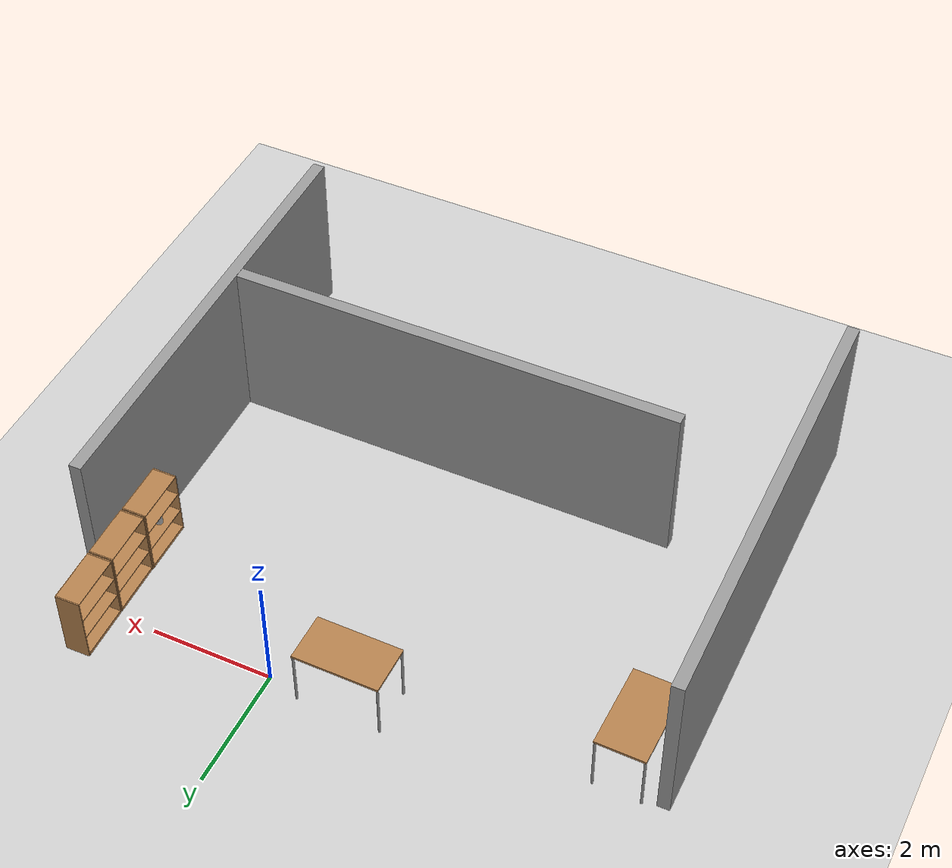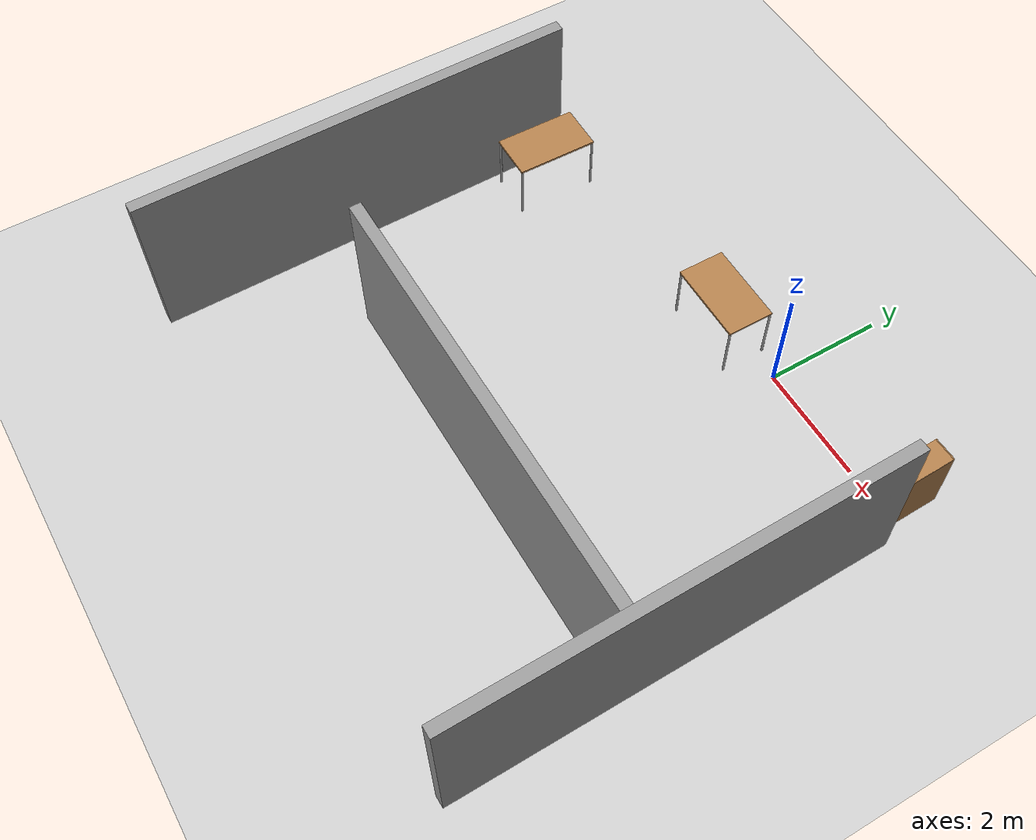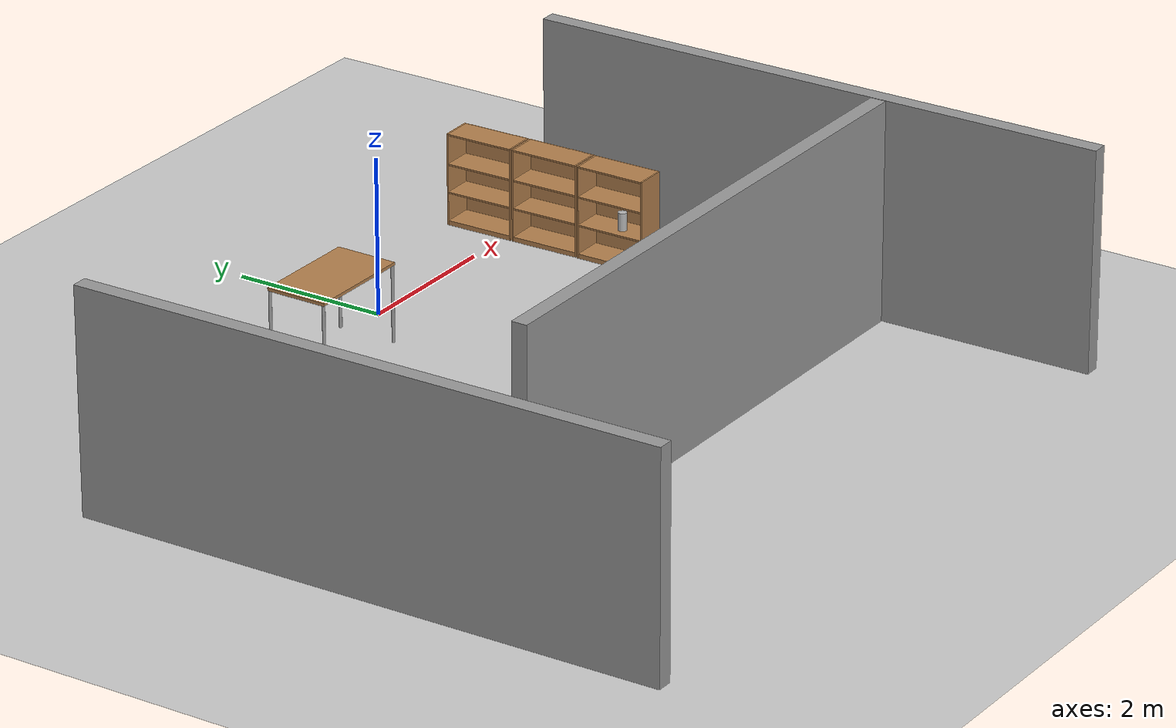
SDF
<sdf version="1.6">
 <world name="default">
  <model name="table_0">
   <static>0</static>
   <link name="link">
    <collision name="surface">
     <pose>0 0 1 0 -0 0</pose>
     <geometry><box><size>1.5 0.8 0.03</size></box></geometry>
     <surface><friction><ode><mu>0.6</mu><mu2>0.6</mu2></ode></friction></surface>
    </collision>
    <visual name="visual1">
     <pose>0 0 1 0 -0 0</pose>
     <geometry><box><size>1.4 0.8 0.04</size></box></geometry>
     <material>
      <script><uri>file://media/materials/scripts/gazebo.material</uri><name>Gazebo/Wood</name></script>
     </material>
    </visual>
    <collision name="front_left_leg">
     <pose>0.68 0.38 0.5 0 -0 0</pose>
     <geometry><cylinder><radius>0.02</radius><length>1</length></cylinder></geometry>
    </collision>
    <visual name="front_left_leg">
     <pose>0.68 0.38 0.5 0 -0 0</pose>
     <geometry><cylinder><radius>0.02</radius><length>1</length></cylinder></geometry>
     <material>
      <script><uri>file://media/materials/scripts/gazebo.material</uri><name>Gazebo/Grey</name></script>
     </material>
    </visual>
    <collision name="front_right_leg">
     <pose>0.68 -0.38 0.5 0 -0 0</pose>
     <geometry><cylinder><radius>0.02</radius><length>1</length></cylinder></geometry>
    </collision>
    <visual name="front_right_leg">
     <pose>0.68 -0.38 0.5 0 -0 0</pose>
     <geometry><cylinder><radius>0.02</radius><length>1</length></cylinder></geometry>
     <material>
      <script><uri>file://media/materials/scripts/gazebo.material</uri><name>Gazebo/Grey</name></script>
     </material>
    </visual>
    <collision name="back_right_leg">
     <pose>-0.68 -0.38 0.5 0 -0 0</pose>
     <geometry><cylinder><radius>0.02</radius><length>1</length></cylinder></geometry>
    </collision>
    <visual name="back_right_leg">
     <pose>-0.68 -0.38 0.5 0 -0 0</pose>
     <geometry><cylinder><radius>0.02</radius><length>1</length></cylinder></geometry>
     <material>
      <script><uri>file://media/materials/scripts/gazebo.material</uri><name>Gazebo/Grey</name></script>
     </material>
    </visual>
    <collision name="back_left_leg">
     <pose>-0.68 0.38 0.5 0 -0 0</pose>
     <geometry><cylinder><radius>0.02</radius><length>1</length></cylinder></geometry>
    </collision>
    <visual name="back_left_leg">
     <pose>-0.68 0.38 0.5 0 -0 0</pose>
     <geometry><cylinder><radius>0.02</radius><length>1</length></cylinder></geometry>
     <material>
      <script><uri>file://media/materials/scripts/gazebo.material</uri><name>Gazebo/Grey</name></script>
     </material>
    </visual>
    <inertial>
     <inertia><ixx>1</ixx><ixy>0</ixy><ixz>0</ixz><iyy>1</iyy><iyz>0</iyz><izz>1</izz></inertia>
     <mass>1</mass>
    </inertial>
   </link>
   <pose>-5.39414 -1.0093 -2e-06 0 -0 1.55426</pose>
  </model>
  <model name="bookshelf_0">
   <static>1</static>
   <link name="link">
    <inertial><mass>1</mass></inertial>
    <collision name="back">
     <pose>0 0.005 0.6 0 -0 0</pose>
     <geometry><box><size>0.9 0.01 1.2</size></box></geometry>
    </collision>
    <visual name="visual1">
     <pose>0 0.005 0.6 0 -0 0</pose>
     <geometry><box><size>0.9 0.01 1.2</size></box></geometry>
     <material>
      <script><uri>file://media/materials/scripts/gazebo.material</uri><name>Gazebo/Wood</name></script>
     </material>
    </visual>
    <collision name="left_side">
     <pose>0.45 -0.195 0.6 0 -0 0</pose>
     <geometry><box><size>0.02 0.4 1.2</size></box></geometry>
    </collision>
    <visual name="visual2">
     <pose>0.45 -0.195 0.6 0 -0 0</pose>
     <geometry><box><size>0.02 0.4 1.2</size></box></geometry>
     <material>
      <script><uri>file://media/materials/scripts/gazebo.material</uri><name>Gazebo/Wood</name></script>
     </material>
    </visual>
    <collision name="right_side">
     <pose>-0.45 -0.195 0.6 0 -0 0</pose>
     <geometry><box><size>0.02 0.4 1.2</size></box></geometry>
    </collision>
    <visual name="visual3">
     <pose>-0.45 -0.195 0.6 0 -0 0</pose>
     <geometry><box><size>0.02 0.4 1.2</size></box></geometry>
     <material>
      <script><uri>file://media/materials/scripts/gazebo.material</uri><name>Gazebo/Wood</name></script>
     </material>
    </visual>
    <collision name="bottom">
     <pose>0 -0.195 0.03 0 -0 0</pose>
     <geometry><box><size>0.88 0.4 0.06</size></box></geometry>
    </collision>
    <visual name="visual4">
     <pose>0 -0.195 0.03 0 -0 0</pose>
     <geometry><box><size>0.88 0.4 0.06</size></box></geometry>
     <material>
      <script><uri>file://media/materials/scripts/gazebo.material</uri><name>Gazebo/Wood</name></script>
     </material>
    </visual>
    <collision name="top">
     <pose>0 -0.195 1.19 0 -0 0</pose>
     <geometry><box><size>0.88 0.4 0.02</size></box></geometry>
    </collision>
    <visual name="visual5">
     <pose>0 -0.195 1.19 0 -0 0</pose>
     <geometry><box><size>0.88 0.4 0.02</size></box></geometry>
     <material>
      <script><uri>file://media/materials/scripts/gazebo.material</uri><name>Gazebo/Wood</name></script>
     </material>
    </visual>
    <collision name="low_shelf">
     <pose>0 -0.195 0.43 0 -0 0</pose>
     <geometry><box><size>0.88 0.4 0.02</size></box></geometry>
    </collision>
    <visual name="visual6">
     <pose>0 -0.195 0.43 0 -0 0</pose>
     <geometry><box><size>0.88 0.4 0.02</size></box></geometry>
     <material>
      <script><uri>file://media/materials/scripts/gazebo.material</uri><name>Gazebo/Wood</name></script>
     </material>
    </visual>
    <collision name="high_shelf">
     <pose>0 -0.195 0.8 0 -0 0</pose>
     <geometry><box><size>0.88 0.4 0.02</size></box></geometry>
    </collision>
    <visual name="visual7">
     <pose>0 -0.195 0.8 0 -0 0</pose>
     <geometry><box><size>0.88 0.4 0.02</size></box></geometry>
     <material>
      <script><uri>file://media/materials/scripts/gazebo.material</uri><name>Gazebo/Wood</name></script>
     </material>
    </visual>
   </link>
   <pose>3.05164 -1.50369 0 0 0 -1.55787</pose>
  </model>
  <model name="ground_plane">
   <static>1</static>
   <link name="link">
    <collision name="collision">
     <geometry><plane><normal>0 0 1</normal><size>100 100</size></plane></geometry>
     <surface><friction><ode><mu>100</mu><mu2>50</mu2></ode></friction></surface>
    </collision>
    <visual name="visual">
     <cast_shadows>0</cast_shadows>
     <geometry><plane><normal>0 0 1</normal><size>100 100</size></plane></geometry>
     <material>
      <script><uri>file://media/materials/scripts/gazebo.material</uri><name>Gazebo/Grey</name></script>
     </material>
    </visual>
   </link>
   <pose>-12.7845 -6.3181 0 0 -0 0</pose>
  </model>
  <model name="grey_wall_0_clone">
   <static>1</static>
   <link name="link">
    <pose>0 0 1.4 0 -0 0</pose>
    <collision name="collision"><geometry><box><size>7.5 0.2 2.8</size></box></geometry></collision>
    <visual name="visual">
     <cast_shadows>0</cast_shadows>
     <geometry><box><size>7.5 0.2 2.8</size></box></geometry>
     <material>
      <script>
       <uri>model://grey_wall/materials/scripts</uri>
       <uri>model://grey_wall/materials/textures</uri>
       <name>vrc/grey_wall</name>
      </script>
     </material>
    </visual>
   </link>
   <pose>-6.0314 -4.12188 0 0 0 -1.55992</pose>
  </model>
  <model name="grey_wall_0_clone_clone_clone">
   <static>1</static>
   <link name="link">
    <pose>0 0 1.4 0 -0 0</pose>
    <collision name="collision"><geometry><box><size>7.5 0.2 2.8</size></box></geometry></collision>
    <visual name="visual">
     <cast_shadows>0</cast_shadows>
     <geometry><box><size>7.5 0.2 2.8</size></box></geometry>
     <material>
      <script>
       <uri>model://grey_wall/materials/scripts</uri>
       <uri>model://grey_wall/materials/textures</uri>
       <name>vrc/grey_wall</name>
      </script>
     </material>
    </visual>
   </link>
   <pose>3.1934 -4.05384 0 0 0 -1.55992</pose>
  </model>
  <model name="grey_wall_0_clone_clone_clone_clone_clone_clone">
   <static>1</static>
   <link name="link">
    <pose>0 0 1.4 0 -0 0</pose>
    <collision name="collision"><geometry><box><size>7.5 0.2 2.8</size></box></geometry></collision>
    <visual name="visual">
     <cast_shadows>0</cast_shadows>
     <geometry><box><size>7.5 0.2 2.8</size></box></geometry>
     <material>
      <script>
       <uri>model://grey_wall/materials/scripts</uri>
       <uri>model://grey_wall/materials/textures</uri>
       <name>vrc/grey_wall</name>
      </script>
     </material>
    </visual>
   </link>
   <pose>-0.596711 -4.94616 -0.00571 0 0 -3.14076</pose>
  </model>
  <model name="beer_clone">
   <link name="link">
    <pose>0 0 0.115 0 -0 0</pose>
    <inertial>
     <mass>0.39</mass>
     <inertia><ixx>0.00058</ixx><ixy>0</ixy><ixz>0</ixz><iyy>0.00058</iyy><iyz>0</iyz><izz>0.00019</izz></inertia>
    </inertial>
    <collision name="collision">
     <geometry><cylinder><radius>0.055</radius><length>0.23</length></cylinder></geometry>
    </collision>
    <visual name="visual">
     <geometry><cylinder><radius>0.055</radius><length>0.23</length></cylinder></geometry>
     <material>
      <script>
       <uri>model://beer/materials/scripts</uri>
       <uri>model://beer/materials/textures</uri>
       <name>Beer/Diffuse</name>
      </script>
     </material>
    </visual>
   </link>
   <pose>2.82225 -1.59151 0.439993 1.1e-05 5.4e-05 -0.053308</pose>
  </model>
  <model name="bookshelf_0_clone">
   <static>1</static>
   <link name="link">
    <inertial><mass>1</mass></inertial>
    <collision name="back">
     <pose>0 0.005 0.6 0 -0 0</pose>
     <geometry><box><size>0.9 0.01 1.2</size></box></geometry>
    </collision>
    <visual name="visual1">
     <pose>0 0.005 0.6 0 -0 0</pose>
     <geometry><box><size>0.9 0.01 1.2</size></box></geometry>
     <material>
      <script><uri>file://media/materials/scripts/gazebo.material</uri><name>Gazebo/Wood</name></script>
     </material>
    </visual>
    <collision name="left_side">
     <pose>0.45 -0.195 0.6 0 -0 0</pose>
     <geometry><box><size>0.02 0.4 1.2</size></box></geometry>
    </collision>
    <visual name="visual2">
     <pose>0.45 -0.195 0.6 0 -0 0</pose>
     <geometry><box><size>0.02 0.4 1.2</size></box></geometry>
     <material>
      <script><uri>file://media/materials/scripts/gazebo.material</uri><name>Gazebo/Wood</name></script>
     </material>
    </visual>
    <collision name="right_side">
     <pose>-0.45 -0.195 0.6 0 -0 0</pose>
     <geometry><box><size>0.02 0.4 1.2</size></box></geometry>
    </collision>
    <visual name="visual3">
     <pose>-0.45 -0.195 0.6 0 -0 0</pose>
     <geometry><box><size>0.02 0.4 1.2</size></box></geometry>
     <material>
      <script><uri>file://media/materials/scripts/gazebo.material</uri><name>Gazebo/Wood</name></script>
     </material>
    </visual>
    <collision name="bottom">
     <pose>0 -0.195 0.03 0 -0 0</pose>
     <geometry><box><size>0.88 0.4 0.06</size></box></geometry>
    </collision>
    <visual name="visual4">
     <pose>0 -0.195 0.03 0 -0 0</pose>
     <geometry><box><size>0.88 0.4 0.06</size></box></geometry>
     <material>
      <script><uri>file://media/materials/scripts/gazebo.material</uri><name>Gazebo/Wood</name></script>
     </material>
    </visual>
    <collision name="top">
     <pose>0 -0.195 1.19 0 -0 0</pose>
     <geometry><box><size>0.88 0.4 0.02</size></box></geometry>
    </collision>
    <visual name="visual5">
     <pose>0 -0.195 1.19 0 -0 0</pose>
     <geometry><box><size>0.88 0.4 0.02</size></box></geometry>
     <material>
      <script><uri>file://media/materials/scripts/gazebo.material</uri><name>Gazebo/Wood</name></script>
     </material>
    </visual>
    <collision name="low_shelf">
     <pose>0 -0.195 0.43 0 -0 0</pose>
     <geometry><box><size>0.88 0.4 0.02</size></box></geometry>
    </collision>
    <visual name="visual6">
     <pose>0 -0.195 0.43 0 -0 0</pose>
     <geometry><box><size>0.88 0.4 0.02</size></box></geometry>
     <material>
      <script><uri>file://media/materials/scripts/gazebo.material</uri><name>Gazebo/Wood</name></script>
     </material>
    </visual>
    <collision name="high_shelf">
     <pose>0 -0.195 0.8 0 -0 0</pose>
     <geometry><box><size>0.88 0.4 0.02</size></box></geometry>
    </collision>
    <visual name="visual7">
     <pose>0 -0.195 0.8 0 -0 0</pose>
     <geometry><box><size>0.88 0.4 0.02</size></box></geometry>
     <material>
      <script><uri>file://media/materials/scripts/gazebo.material</uri><name>Gazebo/Wood</name></script>
     </material>
    </visual>
   </link>
   <pose>3.04375 -0.565968 0 0 0 -1.54975</pose>
  </model>
  <model name="bookshelf_0_clone_clone">
   <static>1</static>
   <link name="link">
    <inertial><mass>1</mass></inertial>
    <collision name="back">
     <pose>0 0.005 0.6 0 -0 0</pose>
     <geometry><box><size>0.9 0.01 1.2</size></box></geometry>
    </collision>
    <visual name="visual1">
     <pose>0 0.005 0.6 0 -0 0</pose>
     <geometry><box><size>0.9 0.01 1.2</size></box></geometry>
     <material>
      <script><uri>file://media/materials/scripts/gazebo.material</uri><name>Gazebo/Wood</name></script>
     </material>
    </visual>
    <collision name="left_side">
     <pose>0.45 -0.195 0.6 0 -0 0</pose>
     <geometry><box><size>0.02 0.4 1.2</size></box></geometry>
    </collision>
    <visual name="visual2">
     <pose>0.45 -0.195 0.6 0 -0 0</pose>
     <geometry><box><size>0.02 0.4 1.2</size></box></geometry>
     <material>
      <script><uri>file://media/materials/scripts/gazebo.material</uri><name>Gazebo/Wood</name></script>
     </material>
    </visual>
    <collision name="right_side">
     <pose>-0.45 -0.195 0.6 0 -0 0</pose>
     <geometry><box><size>0.02 0.4 1.2</size></box></geometry>
    </collision>
    <visual name="visual3">
     <pose>-0.45 -0.195 0.6 0 -0 0</pose>
     <geometry><box><size>0.02 0.4 1.2</size></box></geometry>
     <material>
      <script><uri>file://media/materials/scripts/gazebo.material</uri><name>Gazebo/Wood</name></script>
     </material>
    </visual>
    <collision name="bottom">
     <pose>0 -0.195 0.03 0 -0 0</pose>
     <geometry><box><size>0.88 0.4 0.06</size></box></geometry>
    </collision>
    <visual name="visual4">
     <pose>0 -0.195 0.03 0 -0 0</pose>
     <geometry><box><size>0.88 0.4 0.06</size></box></geometry>
     <material>
      <script><uri>file://media/materials/scripts/gazebo.material</uri><name>Gazebo/Wood</name></script>
     </material>
    </visual>
    <collision name="top">
     <pose>0 -0.195 1.19 0 -0 0</pose>
     <geometry><box><size>0.88 0.4 0.02</size></box></geometry>
    </collision>
    <visual name="visual5">
     <pose>0 -0.195 1.19 0 -0 0</pose>
     <geometry><box><size>0.88 0.4 0.02</size></box></geometry>
     <material>
      <script><uri>file://media/materials/scripts/gazebo.material</uri><name>Gazebo/Wood</name></script>
     </material>
    </visual>
    <collision name="low_shelf">
     <pose>0 -0.195 0.43 0 -0 0</pose>
     <geometry><box><size>0.88 0.4 0.02</size></box></geometry>
    </collision>
    <visual name="visual6">
     <pose>0 -0.195 0.43 0 -0 0</pose>
     <geometry><box><size>0.88 0.4 0.02</size></box></geometry>
     <material>
      <script><uri>file://media/materials/scripts/gazebo.material</uri><name>Gazebo/Wood</name></script>
     </material>
    </visual>
    <collision name="high_shelf">
     <pose>0 -0.195 0.8 0 -0 0</pose>
     <geometry><box><size>0.88 0.4 0.02</size></box></geometry>
    </collision>
    <visual name="visual7">
     <pose>0 -0.195 0.8 0 -0 0</pose>
     <geometry><box><size>0.88 0.4 0.02</size></box></geometry>
     <material>
      <script><uri>file://media/materials/scripts/gazebo.material</uri><name>Gazebo/Wood</name></script>
     </material>
    </visual>
   </link>
   <pose>3.02539 0.370024 0 0 0 -1.54975</pose>
  </model>
  <model name="table_clone_clone">
   <static>0</static>
   <link name="link">
    <collision name="surface">
     <pose>0 0 1 0 -0 0</pose>
     <geometry><box><size>1.5 0.8 0.03</size></box></geometry>
     <surface><friction><ode><mu>0.6</mu><mu2>0.6</mu2></ode></friction></surface>
    </collision>
    <visual name="visual1">
     <pose>0 0 1 0 -0 0</pose>
     <geometry><box><size>1.4 0.8 0.04</size></box></geometry>
     <material>
      <script><uri>file://media/materials/scripts/gazebo.material</uri><name>Gazebo/Wood</name></script>
     </material>
    </visual>
    <collision name="front_left_leg">
     <pose>0.68 0.38 0.5 0 -0 0</pose>
     <geometry><cylinder><radius>0.02</radius><length>1</length></cylinder></geometry>
    </collision>
    <visual name="front_left_leg">
     <pose>0.68 0.38 0.5 0 -0 0</pose>
     <geometry><cylinder><radius>0.02</radius><length>1</length></cylinder></geometry>
     <material>
      <script><uri>file://media/materials/scripts/gazebo.material</uri><name>Gazebo/Grey</name></script>
     </material>
    </visual>
    <collision name="front_right_leg">
     <pose>0.68 -0.38 0.5 0 -0 0</pose>
     <geometry><cylinder><radius>0.02</radius><length>1</length></cylinder></geometry>
    </collision>
    <visual name="front_right_leg">
     <pose>0.68 -0.38 0.5 0 -0 0</pose>
     <geometry><cylinder><radius>0.02</radius><length>1</length></cylinder></geometry>
     <material>
      <script><uri>file://media/materials/scripts/gazebo.material</uri><name>Gazebo/Grey</name></script>
     </material>
    </visual>
    <collision name="back_right_leg">
     <pose>-0.68 -0.38 0.5 0 -0 0</pose>
     <geometry><cylinder><radius>0.02</radius><length>1</length></cylinder></geometry>
    </collision>
    <visual name="back_right_leg">
     <pose>-0.68 -0.38 0.5 0 -0 0</pose>
     <geometry><cylinder><radius>0.02</radius><length>1</length></cylinder></geometry>
     <material>
      <script><uri>file://media/materials/scripts/gazebo.material</uri><name>Gazebo/Grey</name></script>
     </material>
    </visual>
    <collision name="back_left_leg">
     <pose>-0.68 0.38 0.5 0 -0 0</pose>
     <geometry><cylinder><radius>0.02</radius><length>1</length></cylinder></geometry>
    </collision>
    <visual name="back_left_leg">
     <pose>-0.68 0.38 0.5 0 -0 0</pose>
     <geometry><cylinder><radius>0.02</radius><length>1</length></cylinder></geometry>
     <material>
      <script><uri>file://media/materials/scripts/gazebo.material</uri><name>Gazebo/Grey</name></script>
     </material>
    </visual>
    <inertial>
     <inertia><ixx>1</ixx><ixy>0</ixy><ixz>0</ixz><iyy>1</iyy><iyz>0</iyz><izz>1</izz></inertia>
     <mass>1</mass>
    </inertial>
   </link>
   <pose>-1.21527 -0.208553 -3e-06 0 -4e-06 3.13577</pose>
  </model>
 </world>
</sdf>
